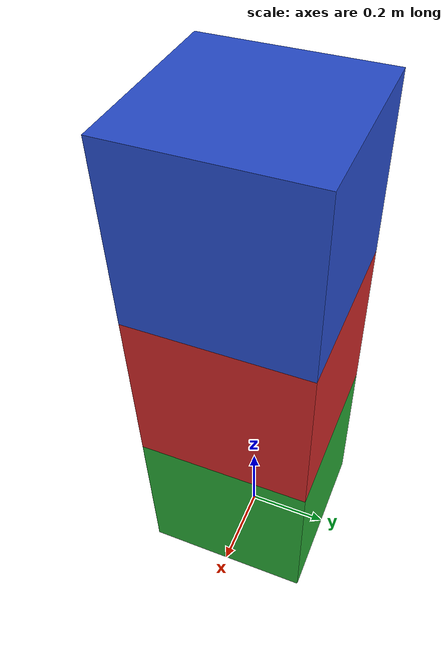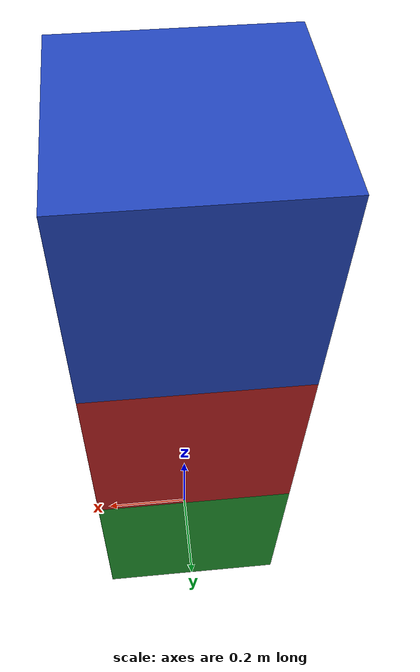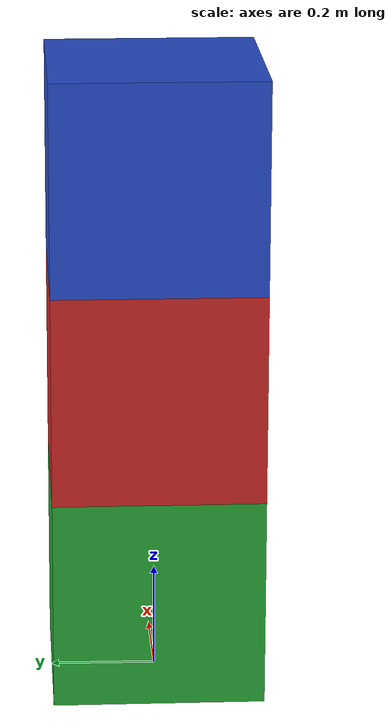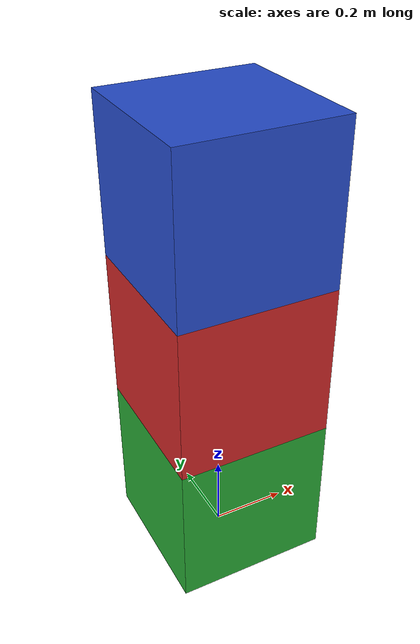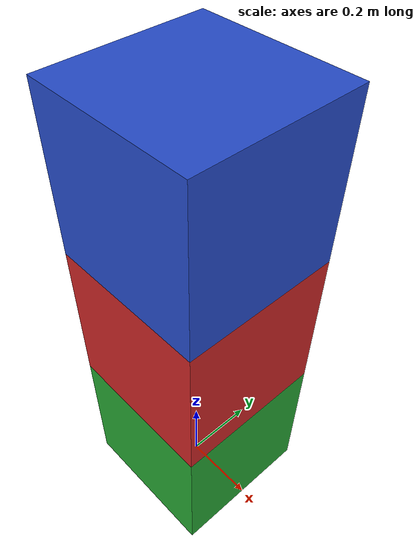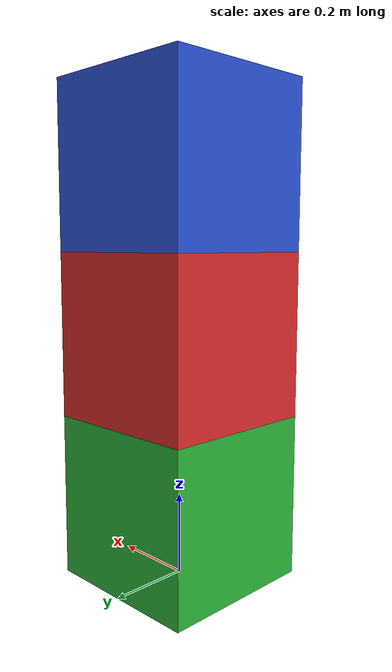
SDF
<?xml version='1.0'?>
<sdf version='1.5'>
    <model name='test_box'>
        <pose>0 0 0.2 0 0 0</pose>
        <link name='base_link'>
            <inertial>
                <mass>1</mass>
                <inertia>
                    <ixx>0.026666666666666672</ixx>
                    <ixy>0</ixy>
                    <ixz>0</ixz>
                    <iyy>0.026666666666666672</iyy>
                    <iyz>0</iyz>
                    <izz>0.026666666666666672</izz>
                </inertia>
            </inertial>
            <visual name='box_visual'>

                <geometry>
                    <box>
                        <size>0.4 0.4 0.4</size>
                    </box>
                </geometry>
                <material>
                    <script>
                        <uri>file://media/materials/scripts/gazebo.material</uri>
                        <name>Gazebo/Green</name>
                    </script>
                </material>

            </visual>
            <collision name='box_collision'>
                <geometry>
                    <box>
                        <size>0.4 0.4 0.4</size>
                    </box>
                </geometry>

            </collision>
        </link>
        <link name='child_link'>
            <pose >0 0 0.4 0 0 0</pose>
            <inertial>
                <mass>1</mass>
                <inertia>
                    <ixx>0.026666666666666672</ixx>
                    <ixy>0</ixy>
                    <ixz>0</ixz>
                    <iyy>0.026666666666666672</iyy>
                    <iyz>0</iyz>
                    <izz>0.026666666666666672</izz>
                </inertia>
            </inertial>
            <visual name='box_visual'>

                <geometry>
                    <box>
                        <size>0.4 0.4 0.4</size>
                    </box>
                </geometry>
                <material>
                    <script>
                        <uri>file://media/materials/scripts/gazebo.material</uri>
                        <name>Gazebo/Red</name>
                    </script>
                </material>

            </visual>
            <collision name='box_collision'>
                <geometry>
                    <box>
                        <size>0.4 0.4 0.4</size>
                    </box>
                </geometry>

            </collision>
        </link>
        <joint name="joint_base_child" type="fixed">
            <parent>base_link</parent>
            <child>child_link</child>
            <pose relative_to="base_link">0 0 0.2 0 0 0</pose>
            <axis>
                <xyz>0 0 1</xyz>
            </axis>
        </joint>
        <link name='fixed_link'>
            <pose relative_to="child_link">0 0 0.4 0 0 0</pose>
            <inertial>
                <mass>1</mass>
                <inertia>
                    <ixx>0.026666666666666672</ixx>
                    <ixy>0</ixy>
                    <ixz>0</ixz>
                    <iyy>0.026666666666666672</iyy>
                    <iyz>0</iyz>
                    <izz>0.026666666666666672</izz>
                </inertia>
            </inertial>
            <visual name='box_visual'>

                <geometry>
                    <box>
                        <size>0.4 0.4 0.4</size>
                    </box>
                </geometry>
                <material>
                    <script>
                        <uri>file://media/materials/scripts/gazebo.material</uri>
                        <name>Gazebo/Blue</name>
                    </script>
                </material>

            </visual>
            <collision name='box_collision'>
                <geometry>
                    <box>
                        <size>0.4 0.4 0.4</size>
                    </box>
                </geometry>

            </collision>
        </link>
        <joint name="joint_child_fixed" type="revolute">
            <parent>base_link</parent>
            <child>fixed_link</child>
            <pose relative_to="child_link">0 0 0.2 0 0 0</pose>
            <axis>
                <xyz>0 0 1</xyz>
            </axis>
        </joint>
        <plugin name="gazebo_ros_joint_state_publisher" filename="libgazebo_ros_joint_state_publisher.so">
            <update_rate>20</update_rate>
            <joint_name>joint_child_fixed</joint_name>
        </plugin>
        <plugin name="gazebo_ros_joint_pose_trajectory" filename="libgazebo_ros_joint_pose_trajectory.so">
            <update_rate>20</update_rate>
        </plugin>
    </model>
</sdf>

<!--
ros2 topic pub -1 /set_joint_trajectory trajectory_msgs/msg/JointTrajectory '{header: {frame_id: world}, joint_names: [joint_child_fixed], points: [  {positions: {0.8}} ]}'
 -->
